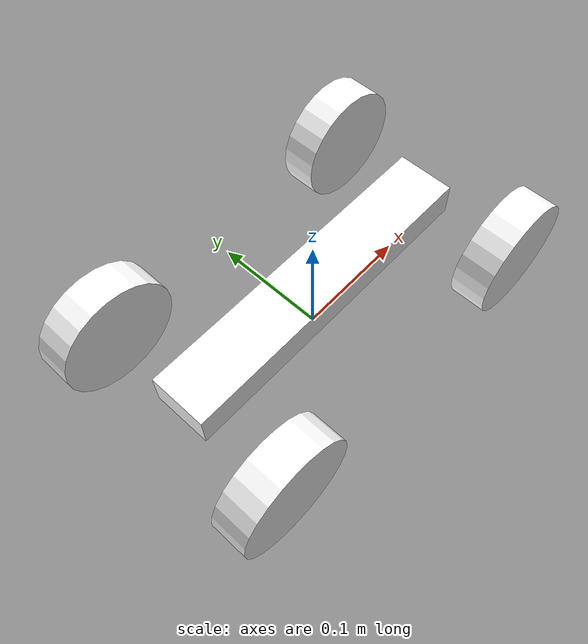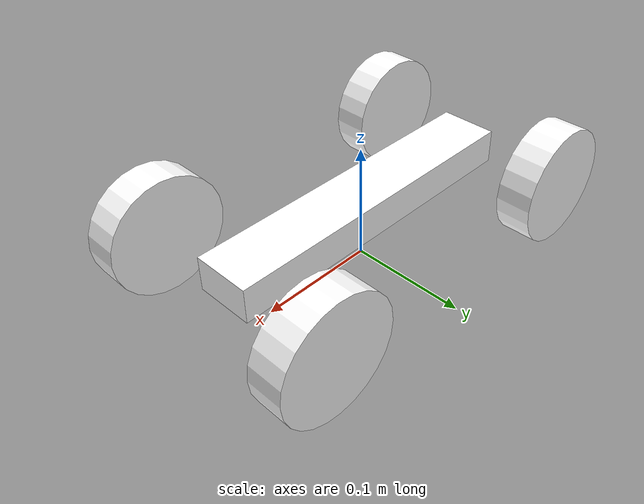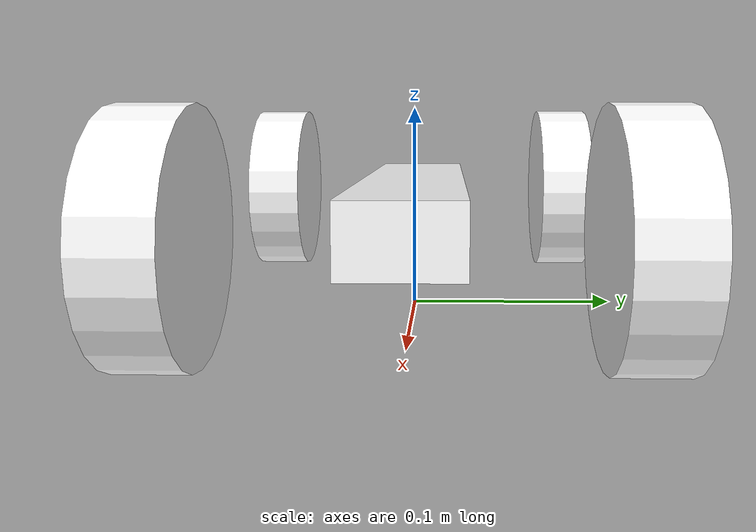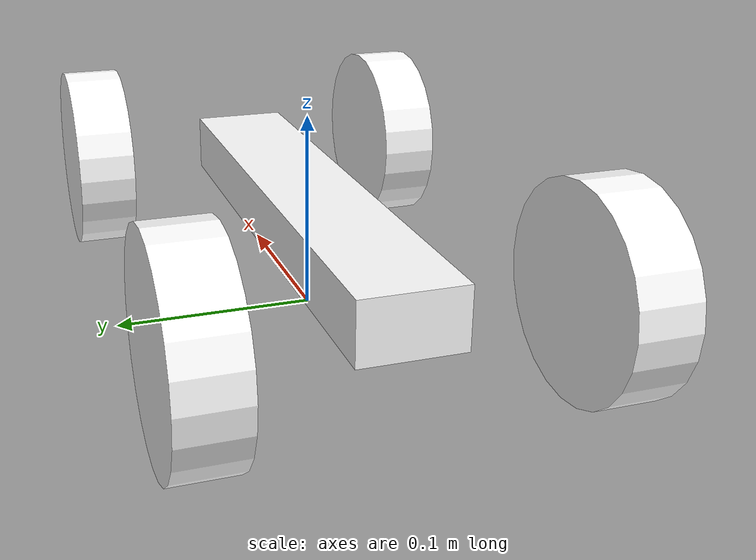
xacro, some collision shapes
<?xml version="1.0" encoding="utf-8"?>

<robot name="racebot" xmlns:xacro="http://www.ros.org/wiki/xacro">
    <xacro:property name="M_PI" value="3.1415926"/>
    <!-- Tire rotational resistance: rotation_fiction -->
    <xacro:property name="rotation_fiction" value="1"/>
    <!-- Tire grip: mu-->
    <xacro:property name="mu" value="9999999999.0"/>
    <xacro:property name="r_wheel" value="0.05"/>
    <xacro:property name="l_wheel" value="0.03"/>

    <xacro:include filename="$(find carsim)/urdf/macros.xacro" />

    <link name="base_footprint" />

<!-- STL model -->
    <link name="base_link">
        <visual>
            <geometry>
                <mesh filename="file://$(find carsim)/meshes/base_link.STL" />
            </geometry>
            <origin xyz="-0.13 0 0" rpy="0 0 0" />
            <material name="yellow">
                <color rgba="1.0 1.0 1.0 0.9" />
            </material>
        </visual>
        <collision>
            <geometry>
                <box size="0.28 0.05 0.03" />
            </geometry>
            <origin xyz="0.0 0.0 0.0" rpy="0.0 0.0 0.0" />
        </collision>
    </link>

    <joint name="base_link2base_footprint" type="fixed">
        <parent link="base_footprint" />
        <child link="base_link"/>
        <origin xyz="0 0 ${r_wheel}" rpy="0 0 0" />
    </joint>

    <!-- base_inertia -->
    <link name="base_inertia">
        <inertial>
            <origin xyz="0 0 0" />
            <mass value="4" />
            <inertia ixx="0.0264" ixy="0" ixz="0" iyy="0.0294" iyz="0" izz="0.00364" />
        </inertial>
    </link>

    <!-- chassis_inertia_joint -->
    <joint name="chassis_inertia_joint" type="fixed">
        <origin xyz="0 0 0" rpy="0 0 0" />
        <parent link="base_link" />
        <child link="base_inertia" />
    </joint>

<!-- left_steering_hinge -->
    <link name="left_steering_hinge">
        <visual>
            <geometry>
                <cylinder radius="0.01" length="0.005" />
            </geometry>
            <origin xyz="0 0 0" rpy="1.57 0 0" />
            <material name="yellow">
                <color rgba="1.0 1.0 1.0 0.9" />
            </material>
        </visual>
        <collision>
            <geometry>
                <cylinder radius="0.01" length="0.005" />
            </geometry>
            <origin xyz="0.0 0.0 0.0" rpy="1.57 0.0 0.0" />
        </collision>
        <inertial>
            <origin xyz="0 0 0" />
            <mass value="0.5" />
            <inertia ixx="1.35E-05" ixy="0" ixz="0" iyy="1.35E-05" iyz="0" izz="2.5E-05" />
        </inertial>
    </link>
    <!-- left_steering_hinge_joint -->
    <joint name="left_steering_hinge_joint" type="revolute">
        <parent link="base_link" />
        <child link="left_steering_hinge" />
        <origin xyz="0.13 0.09 0" />
        <axis xyz="0 0 1" />
        <limit lower="-0.6" upper="0.6" effort="5.0" velocity="1000.0"/>
    </joint>
    <xacro:steering_hinge_transmission name="left_steering_hinge" />

<!-- left_front_wheel -->
    <link name="left_front_wheel">
        <visual>
            <geometry>
                <cylinder radius="${r_wheel}" length="${l_wheel}" />
            </geometry>
            <origin xyz="0 0 0" rpy="1.57 0 0" />
            <material name="yellow">
                <color rgba="1.0 1.0 1.0 0.9" />
            </material>
        </visual>
        <collision>
            <geometry>
                <cylinder radius="${r_wheel}" length="${l_wheel}" />
            </geometry>
            <origin xyz="0.0 0.0 0.0" rpy="1.57 0.0 0.0" />
        </collision>
        <inertial>
            <origin xyz="0 0 0" />
            <mass value="2.0" />
            <inertia ixx="6.64E-04" ixy="0" ixz="0" iyy="6.64E-04" iyz="0" izz="1.02E-03" />
        </inertial>
        <xacro:wheel_friction name="${mu}" />
    </link>

    <joint name="left_front_wheel_joint" type="continuous">
        <parent link="left_steering_hinge" />
        <child link="left_front_wheel" />
        <origin xyz="0 0 0" />
        <axis xyz="0 1 0" />
        <limit effort="10" velocity="1000" />
        <dynamics damping="0.0" friction="${rotation_fiction}"/>
    </joint>
     <xacro:wheel_transmission name="left_front_wheel" />

<!-- right_steering_hinge -->
    <link name="right_steering_hinge">
        <visual>
            <geometry>
                 <cylinder radius="0.01" length="0.005" />
            </geometry>
            <origin xyz="0 0 0" rpy="1.57 0 0" />
            <material name="yellow">
                <color rgba="1.0 1.0 1.0 0.9" />
            </material>
        </visual>
        <collision>
            <geometry>
                <cylinder radius="0.01" length="0.005" />
            </geometry>
            <origin xyz="0.0 0.0 0.0" rpy="1.57 0.0 0.0" />
        </collision>
        <inertial>
            <origin xyz="0 0 0" />
            <mass value="0.5" />
            <inertia ixx="1.35E-05" ixy="0" ixz="0" iyy="1.35E-05" iyz="0" izz="2.5E-05" />
        </inertial>
    </link>

    <joint name="right_steering_hinge_joint" type="revolute">
        <parent link="base_link" />
        <child link="right_steering_hinge" />
        <origin xyz="0.13 -0.09 0" />
        <axis xyz="0 0 1" />
        <limit lower="-0.6" upper="0.6" effort="5.0" velocity="1000.0"/>
    </joint>
    <xacro:steering_hinge_transmission name="right_steering_hinge" />

<!-- right_front_wheel -->
    <link name="right_front_wheel">
        <visual>
            <geometry>
                <cylinder radius="${r_wheel}" length="${l_wheel}" />
            </geometry>
            <origin xyz="0 0 0" rpy="1.57 0 0" />
            <material name="yellow">
                <color rgba="1.0 1.0 1.0 0.9" />
            </material>
        </visual>
        <collision>
            <geometry>
                <cylinder radius="${r_wheel}" length="${l_wheel}" />
            </geometry>
            <origin xyz="0.0 0.0 0.0" rpy="1.57 0.0 0.0" />
        </collision>
        <inertial>
            <origin xyz="0 0 0" />
            <mass value="2.0" />
            <inertia ixx="6.64E-04" ixy="0" ixz="0" iyy="6.64E-04" iyz="0" izz="1.02E-03" />
        </inertial>
        <xacro:wheel_friction name="${mu}" />
    </link>

    <joint name="right_front_wheel_joint" type="continuous">
        <parent link="right_steering_hinge" />
        <child link="right_front_wheel" />
        <origin xyz="0 0 0" />
        <axis xyz="0 1 0" />
        <limit effort="10" velocity="1000" />
        <dynamics damping="0.0" friction="${rotation_fiction}"/>
    </joint>
    <xacro:wheel_transmission name="right_front_wheel" />

<!-- left_rear_wheel -->
    <link name="left_rear_wheel">
        <visual>
            <geometry>
                <cylinder radius="${r_wheel}" length="${l_wheel}" />
            </geometry>
            <origin xyz="0 0 0" rpy="1.57 0 0" />
            <material name="yellow">
                <color rgba="1.0 1.0 1.0 0.9" />
            </material>
        </visual>
        <collision>
            <geometry>
                <cylinder radius="${r_wheel}" length="${l_wheel}" />
            </geometry>
            <origin xyz="0.0 0.0 0.0" rpy="1.57 0.0 0.0" />
        </collision>
        <inertial>
            <origin xyz="0 0 0" />
            <mass value="2.0" />
            <inertia ixx="6.64E-04" ixy="0" ixz="0" iyy="6.64E-04" iyz="0" izz="1.02E-03" />
        </inertial>
        <xacro:wheel_friction name="${mu}" />

    </link>
    <joint name="left_rear_wheel_joint" type="continuous">
        <parent link="base_link" />
        <child link="left_rear_wheel" />
        <origin xyz="-0.13 0.09 0" />
        <axis xyz="0 1 0" />
        <limit effort="10" velocity="1000" />
        <dynamics damping="0.0" friction="${rotation_fiction}"/>
    </joint>
    <xacro:wheel_transmission name="left_rear_wheel" />

<!-- right_rear_wheel -->
    <link name="right_rear_wheel">
        <visual>
            <geometry>
                <cylinder radius="${r_wheel}" length="${l_wheel}" />
            </geometry>
            <origin xyz="0 0 0" rpy="1.57 0 0" />
            <material name="yellow">
                <color rgba="1.0 1.0 1.0 0.9" />
            </material>
        </visual>
        <collision>
            <geometry>
                <cylinder radius="${r_wheel}" length="${l_wheel}" />
            </geometry>
            <origin xyz="0.0 0.0 0.0" rpy="1.57 0.0 0.0" />
        </collision>
        <inertial>
            <origin xyz="0 0 0" />
            <mass value="2.0" />
            <inertia ixx="6.64E-04" ixy="0" ixz="0" iyy="6.64E-04" iyz="0" izz="1.02E-03" />
        </inertial>
        <xacro:wheel_friction name="${mu}" />
    </link>
    <joint name="right_rear_wheel_joint" type="continuous">
        <parent link="base_link" />
        <child link="right_rear_wheel" />
        <origin xyz="-0.13 -0.09 0" />
        <axis xyz="0 1 0" />
        <limit effort="10" velocity="1000" />
        <dynamics damping="0.0" friction="${rotation_fiction}"/>
    </joint>
    <xacro:wheel_transmission name="right_rear_wheel" />

    <!-- ROS 2 Control Hardware Interface -->
    <ros2_control name="GazeboSystem" type="system">
        <hardware>
            <plugin>gazebo_ros2_control/GazeboSystem</plugin>
        </hardware>

        <!-- Wheel Joints -->
        <joint name="left_rear_wheel_joint">
            <command_interface name="velocity">
                <param name="min">-10</param>
                <param name="max">10</param>
            </command_interface>
            <state_interface name="velocity"/>
            <state_interface name="position"/>
        </joint>

        <joint name="right_rear_wheel_joint">
            <command_interface name="velocity">
                <param name="min">-10</param>
                <param name="max">10</param>
            </command_interface>
            <state_interface name="velocity"/>
            <state_interface name="position"/>
        </joint>

        <joint name="left_front_wheel_joint">
            <command_interface name="velocity">
                <param name="min">-10</param>
                <param name="max">10</param>
            </command_interface>
            <state_interface name="velocity"/>
            <state_interface name="position"/>
        </joint>

        <joint name="right_front_wheel_joint">
            <command_interface name="velocity">
                <param name="min">-10</param>
                <param name="max">10</param>
            </command_interface>
            <state_interface name="velocity"/>
            <state_interface name="position"/>
        </joint>

        <!-- Steering Joints -->
        <joint name="left_steering_hinge_joint">
            <command_interface name="position">
                <param name="min">-0.7854</param>
                <param name="max">0.7854</param>
            </command_interface>
            <state_interface name="position"/>
            <state_interface name="velocity"/>
        </joint>

        <joint name="right_steering_hinge_joint">
            <command_interface name="position">
                <param name="min">-0.7854</param>
                <param name="max">0.7854</param>
            </command_interface>
            <state_interface name="position"/>
            <state_interface name="velocity"/>
        </joint>
    </ros2_control>

    <xacro:include filename="$(find carsim)/urdf/racecar.gazebo" />
</robot>
